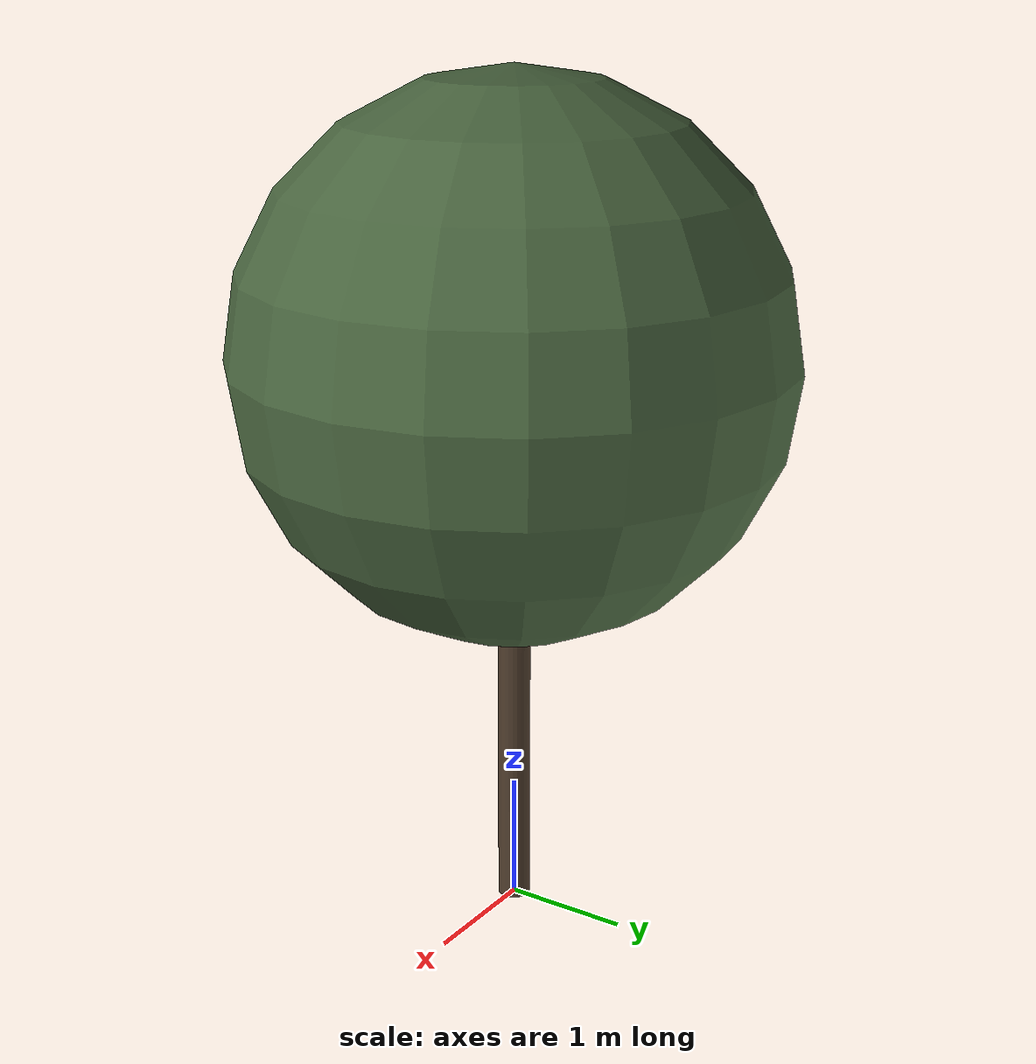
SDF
<?xml version="1.0" ?>
<sdf version="1.10">
  <model name="chene_vert_10">
    <static>true</static>

    <!-- Tronc -->
    <link name="trunk">
      <pose>0 0 1.9488815239119037 0 0 0</pose>
      <visual name="trunk_visual">
        <geometry>
          <cylinder>
            <radius>0.1284092230807375</radius>
            <length>3.8977630478238074</length>
          </cylinder>
        </geometry>
        <material>
          <ambient>0.29 0.22 0.16 1</ambient>
          <diffuse>0.29 0.22 0.16 1</diffuse>
          <specular>0.1 0.1 0.1 1</specular>
        </material>
      </visual>
      <collision name="trunk_collision">
        <geometry>
          <cylinder>
            <radius>0.1284092230807375</radius>
            <length>3.8977630478238074</length>
          </cylinder>
        </geometry>
      </collision>
    </link>

    <!-- Feuillage -->
    <link name="crown">
      <pose>0 0 4.556738461050976 0 0 0</pose>
      <visual name="crown_visual">
        <geometry>
          <sphere>
              <radius>2.1965847107572305</radius>
            </sphere>
        </geometry>
        <material>
          <ambient>0.29 0.40 0.25 1</ambient>
          <diffuse>0.29 0.40 0.25 1</diffuse>
          <specular>0.1 0.1 0.1 1</specular>
        </material>
      </visual>
      <collision name="crown_collision">
        <geometry>
          <sphere>
            <radius>1.7572677686057845</radius>
          </sphere>
        </geometry>
      </collision>
    </link>

    <!-- Joint tronc-feuillage -->
    <joint name="trunk_crown_joint" type="fixed">
      <parent>trunk</parent>
      <child>crown</child>
    </joint>

  </model>
</sdf>
